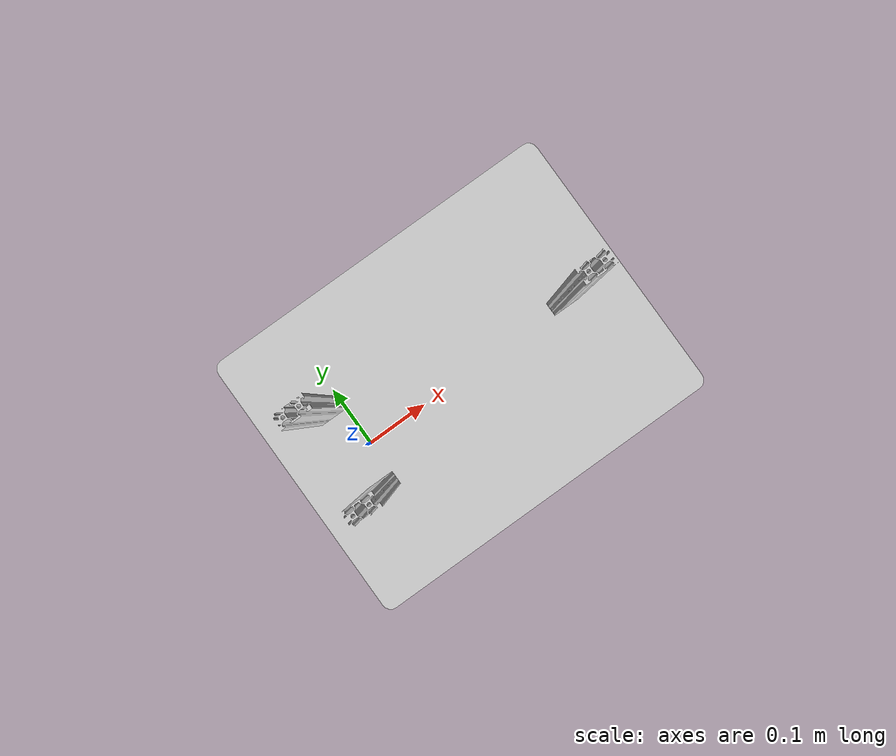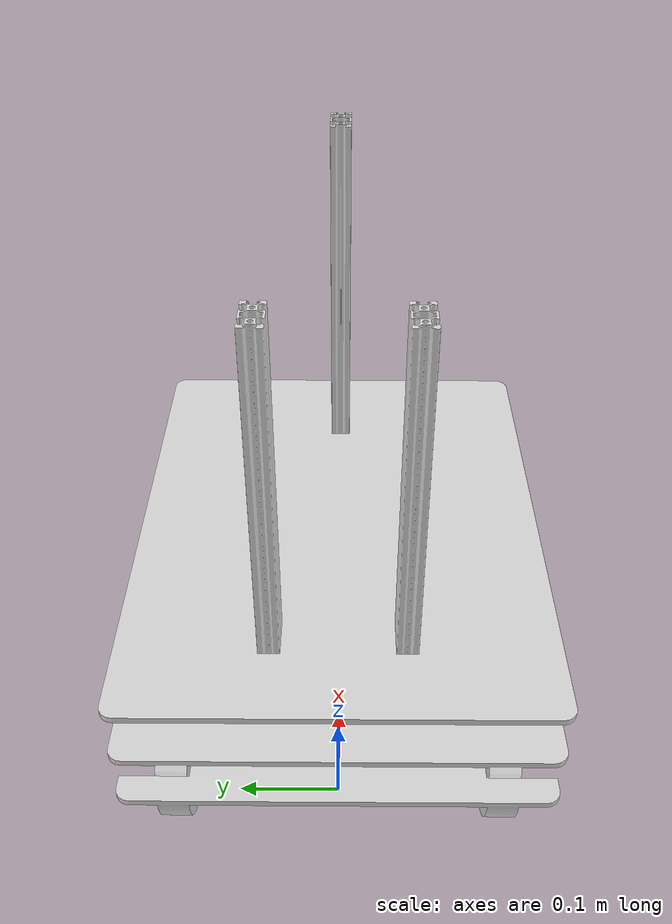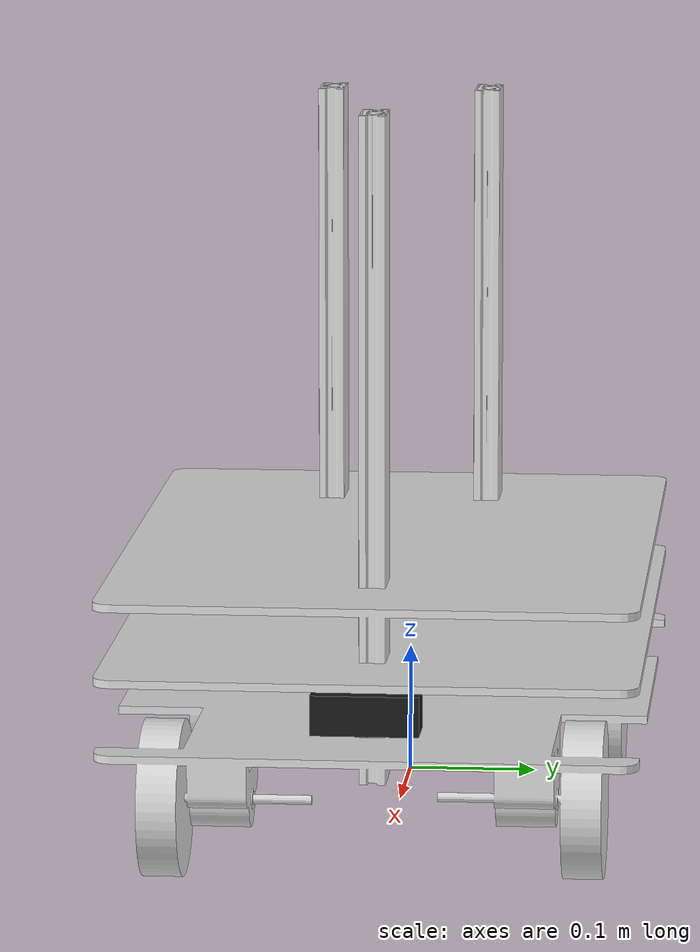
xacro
<?xml version="1.0"?>
<robot name="robot_diff" xmlns:xacro="http://www.ros.org/wiki/xacro">

  <!-- ARGUMENTOS                                                    -->
  <xacro:arg name="sim_mode" default="false" />

  <xacro:if value="$(arg sim_mode)">
    <xacro:include filename="$(find carebot_description)/urdf/robot_diff.gazebo" />
  </xacro:if>
  <xacro:unless value="$(arg sim_mode)">
    <xacro:include filename="$(find carebot_description)/urdf/ros2_control.xacro" />
  </xacro:unless>

  <!-- PROPRIEDADES                                                  -->

  <!-- Base (chapa): 520x400x6mm -->
  <xacro:property name="base_x"         value="0.520"/>
  <xacro:property name="base_y"         value="0.400"/>
  <xacro:property name="base_z"         value="0.006"/>

  <!-- Rodas: D=118mm, E=30mm -->
  <xacro:property name="roda_r"         value="0.059"/>
  <xacro:property name="roda_e"         value="0.030"/>

  <!-- Layout: vão livre 17mm -->
  <xacro:property name="clearance"      value="0.017"/>

  <!-- Posições calculadas -->
  <xacro:property name="base_link_z"    value="0.020"/>   <!-- base inferior acima do chão -->
  <xacro:property name="roda_z_rel"     value="0.039"/>   <!-- centro roda relativo base_link -->
  <xacro:property name="chapa2_z"       value="0.0567"/>  <!-- relativo base_link -->
  <xacro:property name="chapa3_z"       value="0.1073"/>  <!-- relativo base_link -->

  <!-- Rodas: disposição 335.4x335.4mm -->
  <xacro:property name="rx"             value="0.1677"/>
  <xacro:property name="ry"             value="0.1677"/>

  <!-- STL: origin relativo ao base_link -->
  <xacro:property name="stl_z_offset"   value="0.267"/>

  <!-- MACRO: RODA MOTRIZ                                            -->
  <xacro:macro name="roda_motriz" params="nome x y axis_y:=1">
    <link name="${nome}">
      <collision>
        <geometry>
          <cylinder radius="${roda_r}" length="${roda_e}"/>
        </geometry>
        <origin xyz="0 0 0" rpy="1.5707963 0 0"/>
      </collision>
      <inertial>
        <mass value="0.8"/>
        <inertia ixx="0.000697" ixy="0" ixz="0"
                 iyy="0.000697" iyz="0"
                 izz="0.001393"/>
      </inertial>
    </link>
    <joint name="${nome}_joint" type="continuous">
      <parent link="base_link"/>
      <child  link="${nome}"/>
      <origin xyz="${x} ${y} ${roda_z_rel}" rpy="0 0 0"/>
      <axis xyz="0 ${axis_y} 0"/>
      <dynamics damping="0.1" friction="0.2"/>
      <limit effort="100" velocity="20"/>
    </joint>
  </xacro:macro>

  <!-- MACRO: CASTER WHEEL                                           -->
  <xacro:macro name="caster" params="nome x y">
    <link name="${nome}">
      <collision>
        <geometry>
          <cylinder radius="${roda_r}" length="${roda_e}"/>
        </geometry>
        <origin xyz="0 0 0" rpy="1.5707963 0 0"/>
      </collision>
      <inertial>
        <mass value="0.5"/>
        <inertia ixx="0.000436" ixy="0" ixz="0"
                 iyy="0.000436" iyz="0"
                 izz="0.000871"/>
      </inertial>
    </link>
    <joint name="${nome}_joint" type="continuous">
      <parent link="base_link"/>
      <child  link="${nome}"/>
      <origin xyz="${x} ${y} ${roda_z_rel}" rpy="0 0 0"/>
      <axis xyz="0 1 0"/>
      <dynamics damping="0.0" friction="0.0"/>
      <limit effort="0" velocity="20"/>
    </joint>
  </xacro:macro>

  <!-- FRAMES BASE                                                   -->
  <link name="base_footprint"/>

  <joint name="base_footprint_joint" type="fixed">
    <parent link="base_footprint"/>
    <child  link="base_link"/>
    <origin xyz="${rx} 0 ${base_link_z}" rpy="0 0 0"/>
  </joint>

  <!-- base_link: geometria de colisão real (caixa) + visual STL -->
  <link name="base_link">
    <visual>
      <geometry>
        <mesh filename="file://$(find carebot_description)/meshes/robot_diff_visual.stl" scale="1 1 1"/>
      </geometry>
      <origin xyz="0 0 -0.02" rpy="0 0 0"/>
      <material name="robot_body">
        <color rgba="0.85 0.85 0.85 1"/>
      </material>
    </visual>
    <collision>
      <geometry>
        <box size="${base_x} ${base_y} ${base_z}"/>
      </geometry>
      <origin xyz="0 0 0" rpy="0 0 0"/>
    </collision>
    <inertial>
      <mass value="8.0"/>
      <inertia ixx="0.0876" ixy="0" ixz="0"
               iyy="0.1311" iyz="0"
               izz="0.2187"/>
    </inertial>
  </link>

  <!-- Chapas 2 e 3 — apenas colisão, visual já está no STL -->
  <link name="chapa_2">
    <collision>
      <geometry>
        <box size="${base_x} ${base_y} ${base_z}"/>
      </geometry>
    </collision>
    <inertial>
      <mass value="0.5"/>
      <inertia ixx="0.00548" ixy="0" ixz="0"
               iyy="0.00820" iyz="0"
               izz="0.01368"/>
    </inertial>
  </link>
  <joint name="chapa_2_joint" type="fixed">
    <parent link="base_link"/>
    <child  link="chapa_2"/>
    <origin xyz="0 0 ${chapa2_z}" rpy="0 0 0"/>
  </joint>

  <link name="chapa_3">
    <collision>
      <geometry>
        <box size="${base_x} ${base_y} ${base_z}"/>
      </geometry>
    </collision>
    <inertial>
      <mass value="0.5"/>
      <inertia ixx="0.00548" ixy="0" ixz="0"
               iyy="0.00820" iyz="0"
               izz="0.01368"/>
    </inertial>
  </link>
  <joint name="chapa_3_joint" type="fixed">
    <parent link="base_link"/>
    <child  link="chapa_3"/>
    <origin xyz="0 0 ${chapa3_z}" rpy="0 0 0"/>
  </joint>

  <!-- RODAS MOTRIZES TRASEIRAS                                      -->
  <xacro:roda_motriz nome="wheel_left"  x="-${rx}" y=" ${ry}" axis_y="1"/>
  <xacro:roda_motriz nome="wheel_right" x="-${rx}" y="-${ry}" axis_y="1"/>

  <!-- RODAS DE APOIO DIANTEIRAS                                     -->
  <xacro:caster nome="caster_front_left"  x=" ${rx}" y=" ${ry}"/>
  <xacro:caster nome="caster_front_right" x=" ${rx}" y="-${ry}"/>

  <!-- LIDAR                                                         -->
  <link name="lidar_link"/>
  <joint name="lidar_link_joint" type="fixed">
    <parent link="base_link"/>
    <child  link="lidar_link"/>
    <origin xyz="0 0 0.2" rpy="0 0 0"/>
  </joint>

  <!-- IMU                                                           -->
  <link name="imu_link"/>
  <joint name="imu_link_joint" type="fixed">
    <parent link="base_link"/>
    <child  link="imu_link"/>
    <origin xyz="0 0 0.037" rpy="0 0 0"/>
  </joint>

  <!-- CÂMERA                                                        -->
  <link name="camera_link">
    <visual>
      <geometry>
        <box size="0.03 0.08 0.03"/>
      </geometry>
      <material name="black_cam">
        <color rgba="0.1 0.1 0.1 1"/>
      </material>
    </visual>
    <inertial>
      <mass value="0.05"/>
      <inertia ixx="0.000001" ixy="0" ixz="0"
               iyy="0.000001" iyz="0"
               izz="0.000001"/>
    </inertial>
  </link>
  <joint name="camera_link_joint" type="fixed">
    <parent link="base_link"/>
    <child  link="camera_link"/>
    <origin xyz="${base_x/2 - 0.02} 0 ${chapa3_z + 0.015}" rpy="0 0 0"/>
  </joint>

  <link name="camera_link_optical"/>
  <joint name="camera_optical_joint" type="fixed">
    <parent link="camera_link"/>
    <child  link="camera_link_optical"/>
    <origin xyz="0 0 0" rpy="-1.5707963 0 -1.5707963"/>
  </joint>

</robot>
